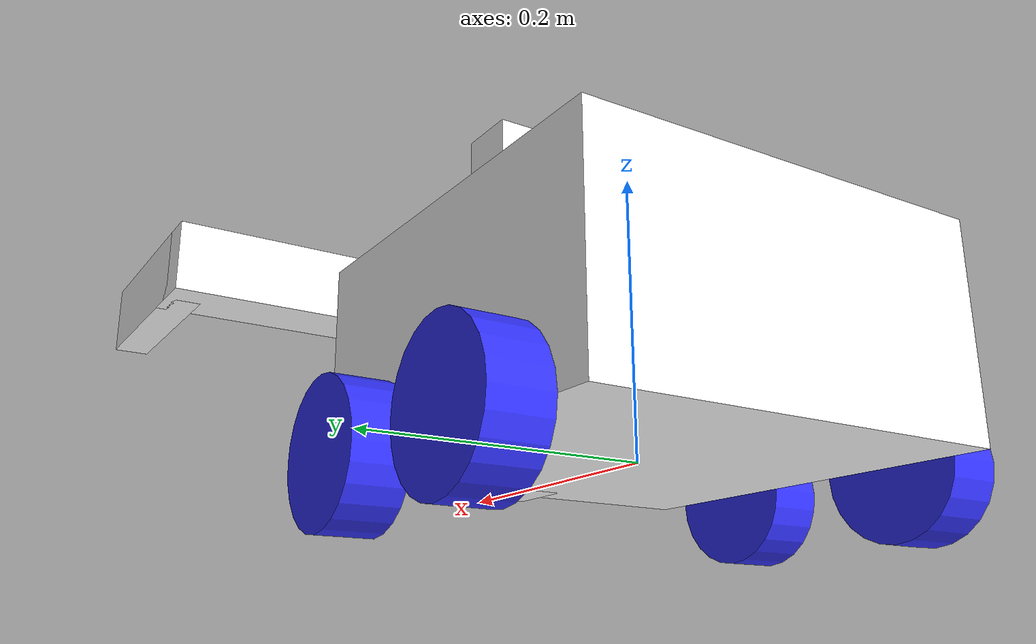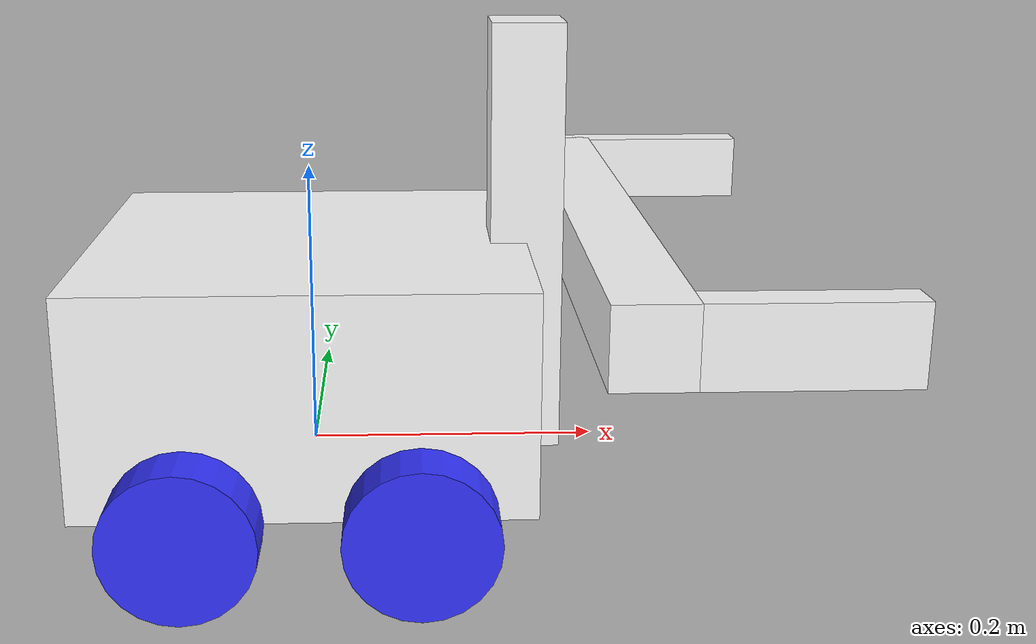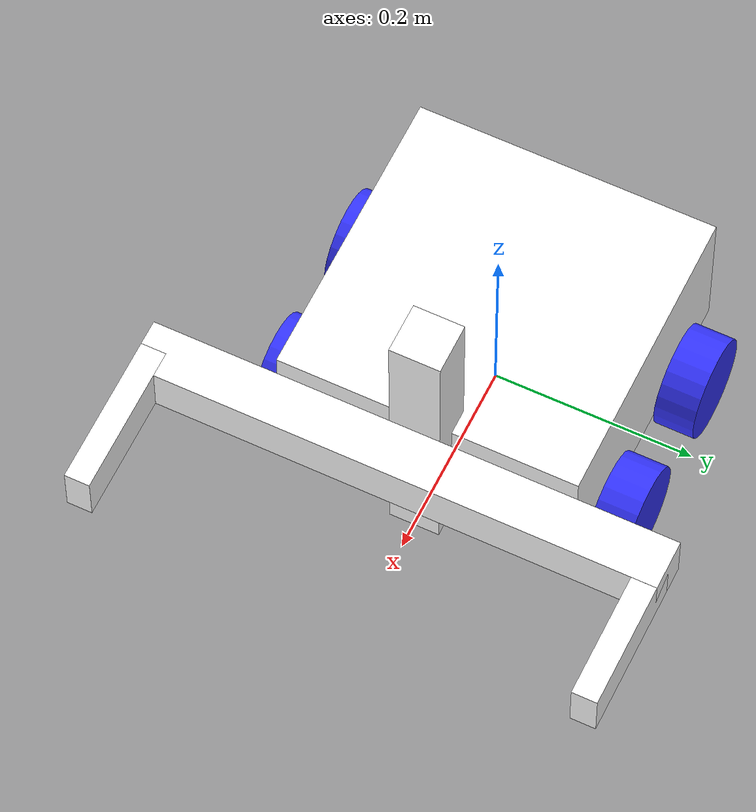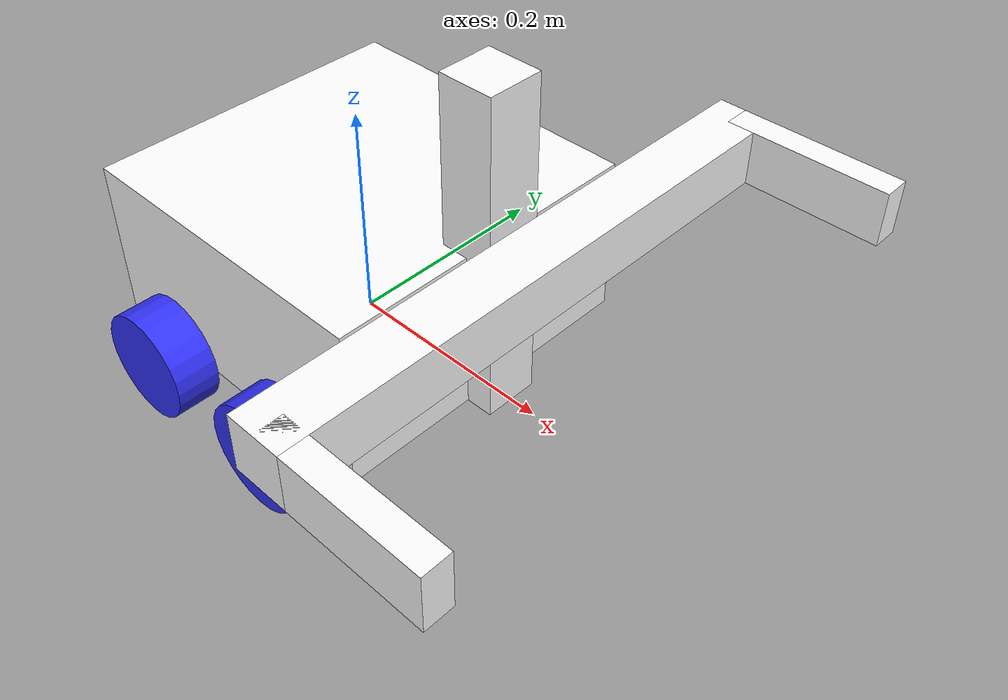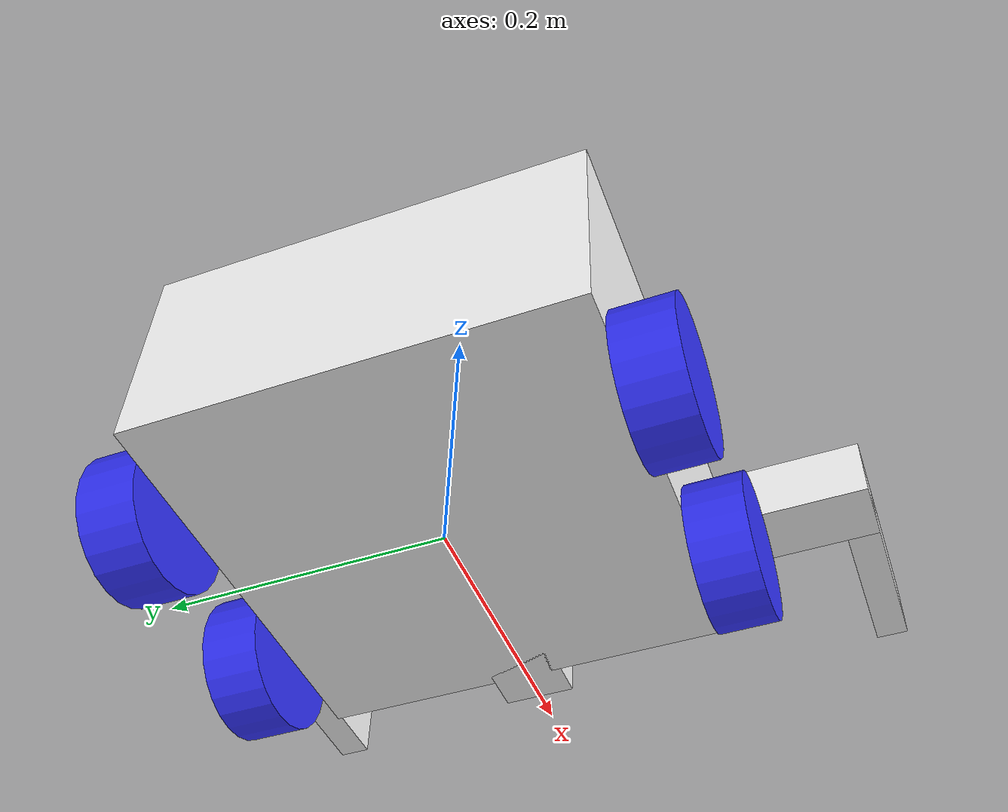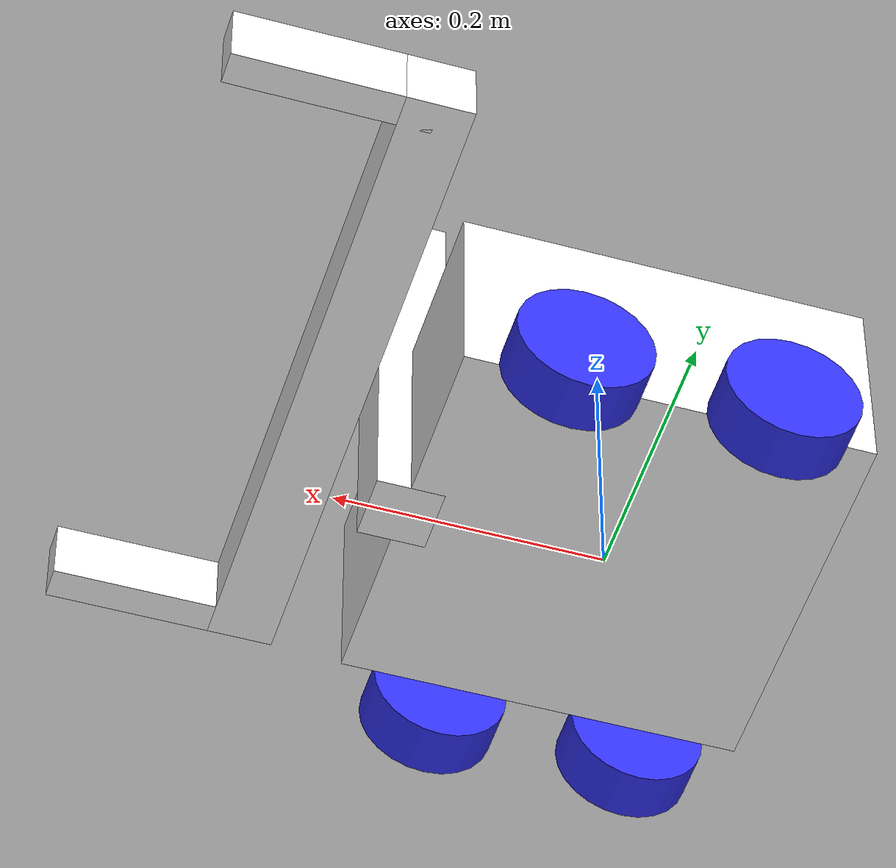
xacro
<?xml version="1.0"?>
<robot xmlns:xacro="http://www.ros.org/wiki/xacro" name="robot">

<xacro:include filename="inertial_macros.xacro" />

<material name="orange">
    <color rgba="1 0.3 0.1 1"/>
</material>
<material name="blue">
    <color rgba="0.2 0.2 1 1"/>
</material>
<material name="black">
    <color rgba="0 0 0 1"/>
</material>
<material name="red">
    <color rgba="1 0 0 1"/>
</material>
<material name="white">
    <color rgba="1 1 1 1"/>
</material>

<link name="base_link">
</link>

<!-- BASE_FOOTPRINT LINK -->
<joint name="base_footprint_joint" type="fixed">
  <parent link="base_link"/>
  <child link="base_footprint"/>
  <origin xyz="0 0 0" rpy="0 0 0"/>
</joint>

<link name="base_footprint">
</link>

<!-- CHASSIS -->
<joint name="chassis_joint" type="fixed">
    <parent link="base_link"/>
    <child link="chassis"/>
    <origin xyz="0 0 0"/>
</joint>

<link name="chassis">
    <visual>
        <origin xyz="0 0 0.075" rpy="0 0 0"/>
        <geometry>
            <box size="0.3 0.3 0.15"/>
        </geometry>
        <material name="white"/>
    </visual>
    <collision>
        <origin xyz="0 0 0.075" rpy="0 0 0"/>
        <geometry>
            <box size="0.3 0.3 0.15"/>
        </geometry>
    </collision>
    <xacro:inertial_box mass="0.5" x="0.3" y="0.3" z="0.15">
        <origin xyz="0 0 0.075" rpy="0 0 0"/>
    </xacro:inertial_box>
</link>

<gazebo reference="chassis">
    <material>Gazebo/White</material>
</gazebo>

<!-- LEFT WHEEL BACK-->
<joint name="back_left_wheel_joint" type="continuous">
    <parent link="base_link"/>
    <child link="back_left_wheel"/>
    <origin xyz="-0.075 0.17 0" rpy="-${pi/2} 0 0"/>
    <axis xyz="0 0 1"/>
</joint>

<link name="back_left_wheel">
    <visual>
        <geometry>
            <cylinder length="0.04" radius="0.05" />
        </geometry>
        <material name="blue"/>
    </visual>
    <collision>
        <geometry>
            <cylinder length="0.04" radius="0.05" />
        </geometry>
    </collision>
    <xacro:inertial_cylinder mass="0.1" length="0.04" radius="0.05">
        <origin xyz="0 0 0" rpy="0 0 0"/>
    </xacro:inertial_cylinder>
</link>

<!-- LEFT WHEEL FRONT-->
<joint name="front_left_wheel_joint" type="continuous">
    <parent link="base_link"/>
    <child link="front_left_wheel"/>
    <origin xyz="0.075 0.17 0" rpy="-${pi/2} 0 0"/>
    <axis xyz="0 0 1"/>
</joint>

<link name="front_left_wheel">
    <visual>
        <geometry>
            <cylinder length="0.04" radius="0.05" />
        </geometry>
        <material name="blue"/>
    </visual>
    <collision>
        <geometry>
            <cylinder length="0.04" radius="0.05" />
        </geometry>
    </collision>
    <xacro:inertial_cylinder mass="0.1" length="0.04" radius="0.05">
        <origin xyz="0 0 0" rpy="0 0 0"/>
    </xacro:inertial_cylinder>
</link>

<!-- RIGHT WHEEL BACK -->
<joint name="back_right_wheel_joint" type="continuous">
    <parent link="base_link"/>
    <child link="back_right_wheel"/>
    <origin xyz="-0.075 -0.17 0" rpy="${pi/2} 0 0"/>
    <axis xyz="0 0 -1"/>
</joint>

<link name="back_right_wheel">
    <visual>
        <geometry>
            <cylinder length="0.04" radius="0.05" />
        </geometry>
        <material name="blue"/>
    </visual>
    <collision>
        <geometry>
            <cylinder length="0.04" radius="0.05" />
        </geometry>
    </collision>
    <xacro:inertial_cylinder mass="0.1" length="0.04" radius="0.05">
        <origin xyz="0 0 0" rpy="0 0 0"/>
    </xacro:inertial_cylinder>
</link>

<!-- RIGHT WHEEL FRONT -->
<joint name="front_right_wheel_joint" type="continuous">
    <parent link="base_link"/>
    <child link="front_right_wheel"/>
    <origin xyz="0.075 -0.17 0" rpy="${pi/2} 0 0"/>
    <axis xyz="0 0 -1"/>
</joint>

<link name="front_right_wheel">
    <visual>
        <geometry>
            <cylinder length="0.04" radius="0.05" />
        </geometry>
        <material name="blue"/>
    </visual>
    <collision>
        <geometry>
            <cylinder length="0.04" radius="0.05" />
        </geometry>
    </collision>
    <xacro:inertial_cylinder mass="0.1" length="0.04" radius="0.05">
        <origin xyz="0 0 0" rpy="0 0 0"/>
    </xacro:inertial_cylinder>
</link>

<!-- ARM BASE 1-->
<joint name="arm_base1_joint" type="fixed">
    <parent link="chassis"/>
    <child link="arm_base1"/>
    <origin xyz="0 0 0" rpy="0 0 0"/> </joint>

<link name="arm_base1">
     <visual>
        <origin xyz="0.15 0 0.15" rpy="0 0 0"/>
        <geometry>
            <box size="0.05 0.05 0.3"/>
        </geometry>
        <material name="white"/>
    </visual>
    <collision>
        <origin xyz="0.15 0 0.15" rpy="0 0 0"/>
        <geometry>
            <box size="0.05 0.05 0.3"/>
        </geometry>
    </collision>
    <xacro:inertial_box mass="0.5" x="0.05" y="0.05" z="0.3">
        <origin xyz="0.15 0 0.15" rpy="0 0 0"/>
    </xacro:inertial_box>
</link>

<!-- ARM BASE 2-->
<joint name="arm_base2_joint" type="prismatic">
    <parent link="arm_base1"/>
    <child link="arm_base2"/>
    <origin xyz="0.2 0 0.15" rpy="0 0 0"/>
    <axis xyz="0 0 1"/>
    <limit lower="-0.125" upper="0.125" effort="100" velocity="1.0"/></joint>

<link name="arm_base2">
     <visual>
        <origin xyz="0 0 0" rpy="0 0 0"/>
        <geometry>
            <box size="0.05 0.52 0.05"/>

        </geometry>
        <material name="white"/>
    </visual>
    <collision>
        <origin xyz="0 0 0" rpy="0 0 0"/>
        <geometry>
            <box size="0.05 0.52 0.05"/>
        </geometry>
    </collision>
    <xacro:inertial_box mass="0.5" x="0.05" y="0.52" z="0.05">
        <origin xyz="0 0 0" rpy="0 0 0"/>
    </xacro:inertial_box>
</link>

<!-- ARM L-->

<joint name="arm_slide_joint_L" type="prismatic">
    <parent link="arm_base2"/>
    <child link="arm_dummy_link"/>
    <origin xyz="0 -0.2475 0" rpy="0 0 0"/>
    <axis xyz="0 1 0"/>
    <limit lower="0" upper="0.235" effort="100" velocity="1.0"/>
</joint>

<link name="arm_dummy_link">
    <xacro:inertial_box mass="0.01" x="0.01" y="0.01" z="0.01">
        <origin xyz="0 0 0" rpy="0 0 0"/>
    </xacro:inertial_box>
</link>

<joint name="arm_rotate_joint_L" type="revolute">
    <parent link="arm_dummy_link"/>
    <child link="arm_link_L"/>
    <origin xyz="0 0 0" rpy="0 0 0"/>
    <axis xyz="0 0 1"/>
    <limit lower="-0.785" upper="0.785" effort="100" velocity="1.0"/>
</joint>

<link name="arm_link_L">
    <visual>
        <origin xyz="0.075 0 0" rpy="0 0 0"/>
        <geometry>
            <box size="0.15 0.025 0.05"/>
        </geometry>
        <material name="white"/>
    </visual>
    <collision>
        <origin xyz="0.075 0 0" rpy="0 0 0"/>
        <geometry>
            <box size="0.15 0.025 0.05"/>
        </geometry>
    </collision>
    <xacro:inertial_box mass="0.5" x="0.15" y="0.025" z="0.05">
        <origin xyz="0 0 0" rpy="0 0 0"/>
    </xacro:inertial_box>
</link>

<!-- ARM R -->
<joint name="arm_slide_joint_R" type="prismatic">
    <parent link="arm_base2"/>
    <child link="arm_dummy_link_R"/>
    <origin xyz="0 0.2475 0" rpy="0 0 0"/>
    <axis xyz="0 1 0"/>
    <limit lower="-0.235" upper="0" effort="100" velocity="1.0"/>
</joint>

<link name="arm_dummy_link_R">
    <xacro:inertial_box mass="0.01" x="0.01" y="0.01" z="0.01">
        <origin xyz="0 0 0" rpy="0 0 0"/>
    </xacro:inertial_box>
</link>

<joint name="arm_rotate_joint_R" type="revolute">
    <parent link="arm_dummy_link_R"/>
    <child link="arm_link_R"/>
    <origin xyz="0 0 0" rpy="0 0 0"/>
    <axis xyz="0 0 1"/>
    <limit lower="-0.785" upper="0.785" effort="100" velocity="1.0"/>
</joint>

<link name="arm_link_R">
    <visual>
        <origin xyz="0.075 0 0" rpy="0 0 0"/>
        <geometry>
            <box size="0.15 0.025 0.05"/>
        </geometry>
        <material name="white"/>
    </visual>
    <collision>
        <origin xyz="0.075 0 0" rpy="0 0 0"/>
        <geometry>
            <box size="0.15 0.025 0.05"/>
        </geometry>
    </collision>
    <xacro:inertial_box mass="0.5" x="0.15" y="0.025" z="0.05">
        <origin xyz="0.075 0 0" rpy="0 0 0"/>
    </xacro:inertial_box>
</link>

</robot>

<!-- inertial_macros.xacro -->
<robot xmlns:xacro="http://www.ros.org/wiki/xacro" >

      <!-- Specify some standard inertial calculations https://en.wikipedia.org/wiki/List_of_moments_of_inertia -->
      <!-- These make use of xacro's mathematical functionality -->
    <xacro:macro name="inertial_sphere" params="mass radius *origin">
        <inertial>
            <xacro:insert_block name="origin"/>
            <mass value="${mass}" />
            <inertia ixx="${(2/5) * mass * (radius*radius)}" ixy="0.0" ixz="0.0"
                    iyy="${(2/5) * mass * (radius*radius)}" iyz="0.0"
                    izz="${(2/5) * mass * (radius*radius)}" />
        </inertial>
    </xacro:macro>
    <xacro:macro name="inertial_box" params="mass x y z *origin">
        <inertial>
            <xacro:insert_block name="origin"/>
            <mass value="${mass}" />
            <inertia ixx="${(1/12) * mass * (y*y+z*z)}" ixy="0.0" ixz="0.0"
                    iyy="${(1/12) * mass * (x*x+z*z)}" iyz="0.0"
                    izz="${(1/12) * mass * (x*x+y*y)}" />
        </inertial>
    </xacro:macro>
      <xacro:macro name="inertial_cylinder" params="mass length radius *origin">
        <inertial>
            <xacro:insert_block name="origin"/>
            <mass value="${mass}" />
            <inertia ixx="${(1/12) * mass * (3*radius*radius + length*length)}" ixy="0.0" ixz="0.0"
                    iyy="${(1/12) * mass * (3*radius*radius + length*length)}" iyz="0.0"
                    izz="${(1/2) * mass * (radius*radius)}" />
        </inertial>
      </xacro:macro>
    </robot>
